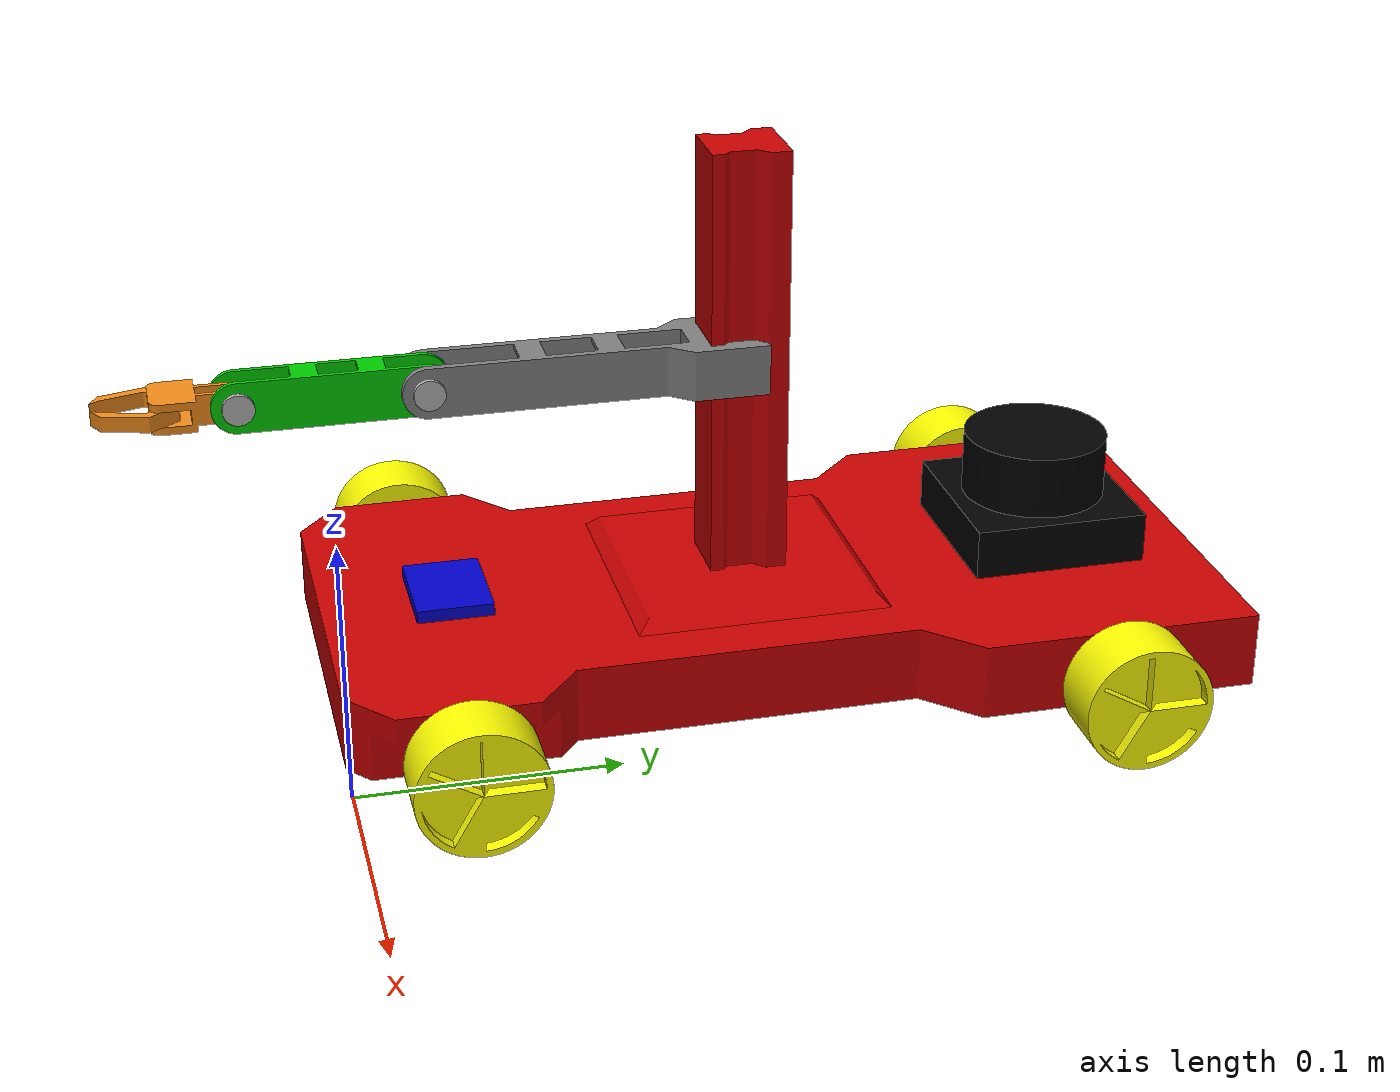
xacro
<?xml version="1.0" ?>
<robot name="robot" xmlns:xacro="http://www.ros.org/wiki/xacro">

<xacro:include filename="$(find robot_description)/urdf/materials.xacro" />
<xacro:include filename="$(find robot_description)/urdf/robot.trans" />
<xacro:include filename="$(find robot_description)/urdf/robot.gazebo" />
<link name="base_link">
  <inertial>
    <origin xyz="-0.09000000373925139 0.18020901564422104 0.015073742414888944" rpy="0 0 0"/>
    <mass value="2.30970237246439"/>
    <inertia ixx="0.025147" iyy="0.005246" izz="0.030046" ixy="-0.0" iyz="2.3e-05" ixz="0.0"/>
  </inertial>
  <visual>
    <origin xyz="0 0 0" rpy="0 0 0"/>
    <geometry>
      <mesh filename="package://robot_description/meshes/base_link.stl" scale="0.001 0.001 0.001"/>
    </geometry>
    <material name="red"/>
  </visual>
</link>

<link name="wheel_behind_right_1">
  <inertial>
    <origin xyz="-0.01128923766816145 5.551115123125783e-17 1.734723475976807e-18" rpy="0 0 0"/>
    <mass value="0.3437196887338507"/>
    <inertia ixx="0.00011" iyy="7e-05" izz="7e-05" ixy="0.0" iyz="0.0" ixz="0.0"/>
  </inertial>
  <visual>
    <origin xyz="0.183 -0.295 -0.011" rpy="0 0 0"/>
    <geometry>
      <mesh filename="package://robot_description/meshes/wheel_behind_right_1.stl" scale="0.001 0.001 0.001"/>
    </geometry>
    <material name="yellow"/>
  </visual>
  <collision>
    <origin xyz="0.183 -0.295 -0.011" rpy="0 0 0"/>
    <geometry>
      <mesh filename="package://robot_description/meshes/wheel_behind_right_1.stl" scale="0.001 0.001 0.001"/>
    </geometry>
  </collision>
</link>

<link name="wheel_front_right_1">
  <inertial>
    <origin xyz="-0.011289240544085588 3.858652136423668e-07 -4.86520340636093e-07" rpy="0 0 0"/>
    <mass value="0.3437196887338507"/>
    <inertia ixx="0.00011" iyy="7e-05" izz="7e-05" ixy="0.0" iyz="-0.0" ixz="0.0"/>
  </inertial>
  <visual>
    <origin xyz="0.183 -0.043481 -0.011052" rpy="0 0 0"/>
    <geometry>
      <mesh filename="package://robot_description/meshes/wheel_front_right_1.stl" scale="0.001 0.001 0.001"/>
    </geometry>
    <material name="yellow"/>
  </visual>
  <collision>
    <origin xyz="0.183 -0.043481 -0.011052" rpy="0 0 0"/>
    <geometry>
      <mesh filename="package://robot_description/meshes/wheel_front_right_1.stl" scale="0.001 0.001 0.001"/>
    </geometry>
  </collision>
</link>

<link name="right_steering_1">
  <inertial>
    <origin xyz="-0.0023574800810829133 3.8586521369093907e-07 -0.0051547049471979065" rpy="0 0 0"/>
    <mass value="0.0020349235937285573"/>
    <inertia ixx="0.0" iyy="0.0" izz="0.0" ixy="-0.0" iyz="0.0" ixz="-0.0"/>
  </inertial>
  <visual>
    <origin xyz="0.175052 -0.043481 -0.018" rpy="0 0 0"/>
    <geometry>
      <mesh filename="package://robot_description/meshes/right_steering_1.stl" scale="0.001 0.001 0.001"/>
    </geometry>
    <material name="black"/>
  </visual>
  <collision>
    <origin xyz="0.175052 -0.043481 -0.018" rpy="0 0 0"/>
    <geometry>
      <mesh filename="package://robot_description/meshes/right_steering_1.stl" scale="0.001 0.001 0.001"/>
    </geometry>
  </collision>
</link>

<link name="wheel_behind_left_1">
  <inertial>
    <origin xyz="0.011289237668161436 5.551115123125783e-17 0.0" rpy="0 0 0"/>
    <mass value="0.3437196887338507"/>
    <inertia ixx="0.00011" iyy="7e-05" izz="7e-05" ixy="0.0" iyz="0.0" ixz="0.0"/>
  </inertial>
  <visual>
    <origin xyz="-0.003 -0.295 -0.011" rpy="0 0 0"/>
    <geometry>
      <mesh filename="package://robot_description/meshes/wheel_behind_left_1.stl" scale="0.001 0.001 0.001"/>
    </geometry>
    <material name="yellow"/>
  </visual>
  <collision>
    <origin xyz="-0.003 -0.295 -0.011" rpy="0 0 0"/>
    <geometry>
      <mesh filename="package://robot_description/meshes/wheel_behind_left_1.stl" scale="0.001 0.001 0.001"/>
    </geometry>
  </collision>
</link>

<link name="wheel_front_left_1">
  <inertial>
    <origin xyz="0.011289237981085803 3.858652136840002e-07 1.480239065331651e-07" rpy="0 0 0"/>
    <mass value="0.3437196887338506"/>
    <inertia ixx="0.00011" iyy="7e-05" izz="7e-05" ixy="-0.0" iyz="-0.0" ixz="0.0"/>
  </inertial>
  <visual>
    <origin xyz="-0.003 -0.043481 -0.010892" rpy="0 0 0"/>
    <geometry>
      <mesh filename="package://robot_description/meshes/wheel_front_left_1.stl" scale="0.001 0.001 0.001"/>
    </geometry>
    <material name="yellow"/>
  </visual>
  <collision>
    <origin xyz="-0.003 -0.043481 -0.010892" rpy="0 0 0"/>
    <geometry>
      <mesh filename="package://robot_description/meshes/wheel_front_left_1.stl" scale="0.001 0.001 0.001"/>
    </geometry>
  </collision>
</link>

<link name="left_steering_1">
  <inertial>
    <origin xyz="0.002416096061838381 3.8586521369787796e-07 -0.0052574341556820645" rpy="0 0 0"/>
    <mass value="0.002073508228019929"/>
    <inertia ixx="0.0" iyy="0.0" izz="0.0" ixy="-0.0" iyz="0.0" ixz="0.0"/>
  </inertial>
  <visual>
    <origin xyz="0.005108 -0.043481 -0.018" rpy="0 0 0"/>
    <geometry>
      <mesh filename="package://robot_description/meshes/left_steering_1.stl" scale="0.001 0.001 0.001"/>
    </geometry>
    <material name="black"/>
  </visual>
  <collision>
    <origin xyz="0.005108 -0.043481 -0.018" rpy="0 0 0"/>
    <geometry>
      <mesh filename="package://robot_description/meshes/left_steering_1.stl" scale="0.001 0.001 0.001"/>
    </geometry>
  </collision>
</link>

<link name="base_link_slide_1">
  <inertial>
    <origin xyz="-9.561337288854777e-07 -0.007878873877462195 0.06716724178772196" rpy="0 0 0"/>
    <mass value="1.360104086481715"/>
    <inertia ixx="0.004785" iyy="0.004758" izz="0.000676" ixy="0.0" iyz="-6.6e-05" ixz="0.0"/>
  </inertial>
  <visual>
    <origin xyz="0.09 -0.175 -0.03" rpy="0 0 0"/>
    <geometry>
      <mesh filename="package://robot_description/meshes/base_link_slide_1.stl" scale="0.001 0.001 0.001"/>
    </geometry>
    <material name="red"/>
  </visual>
  <collision>
    <origin xyz="0.09 -0.175 -0.03" rpy="0 0 0"/>
    <geometry>
      <mesh filename="package://robot_description/meshes/base_link_slide_1.stl" scale="0.001 0.001 0.001"/>
    </geometry>
  </collision>
</link>

<link name="link_slide_1">
  <inertial>
    <origin xyz="4.46770416505371e-06 -0.031290443477246035 -1.5255917501511007e-09" rpy="0 0 0"/>
    <mass value="0.19806946909701184"/>
    <inertia ixx="0.000297" iyy="2.9e-05" izz="0.000311" ixy="0.0" iyz="-0.0" ixz="0.0"/>
  </inertial>
  <visual>
    <origin xyz="0.090001 -0.152161 -0.12" rpy="0 0 0"/>
    <geometry>
      <mesh filename="package://robot_description/meshes/link_slide_1.stl" scale="0.001 0.001 0.001"/>
    </geometry>
    <material name="grey"/>
  </visual>
  <collision>
    <origin xyz="0.090001 -0.152161 -0.12" rpy="0 0 0"/>
    <geometry>
      <mesh filename="package://robot_description/meshes/link_slide_1.stl" scale="0.001 0.001 0.001"/>
    </geometry>
  </collision>
</link>

<link name="link_rotate_1">
  <inertial>
    <origin xyz="0.007007510191658614 -0.03477769725571699 1.0712478404339976e-09" rpy="0 0 0"/>
    <mass value="0.056873946328959236"/>
    <inertia ixx="3.2e-05" iyy="4e-06" izz="3.2e-05" ixy="-0.0" iyz="0.0" ixz="-0.0"/>
  </inertial>
  <visual>
    <origin xyz="0.097001 -0.045 -0.12" rpy="0 0 0"/>
    <geometry>
      <mesh filename="package://robot_description/meshes/link_rotate_1.stl" scale="0.001 0.001 0.001"/>
    </geometry>
    <material name="green"/>
  </visual>
  <collision>
    <origin xyz="0.097001 -0.045 -0.12" rpy="0 0 0"/>
    <geometry>
      <mesh filename="package://robot_description/meshes/link_rotate_1.stl" scale="0.001 0.001 0.001"/>
    </geometry>
  </collision>
</link>

<link name="link_gripper_left_1">
  <inertial>
    <origin xyz="0.00417701567042679 -0.013637441028740031 0.003000003114342592" rpy="0 0 0"/>
    <mass value="0.0058998093110918725"/>
    <inertia ixx="0.0" iyy="0.0" izz="0.0" ixy="-0.0" iyz="-0.0" ixz="0.0"/>
  </inertial>
  <visual>
    <origin xyz="0.085 0.048 -0.117" rpy="0 0 0"/>
    <geometry>
      <mesh filename="package://robot_description/meshes/link_gripper_left_1.stl" scale="0.001 0.001 0.001"/>
    </geometry>
    <material name="Orange"/>
  </visual>
  <collision>
    <origin xyz="0.085 0.048 -0.117" rpy="0 0 0"/>
    <geometry>
      <mesh filename="package://robot_description/meshes/link_gripper_left_1.stl" scale="0.001 0.001 0.001"/>
    </geometry>
  </collision>
</link>

<link name="link_gripper_right_1">
  <inertial>
    <origin xyz="-0.004177018263228902 -0.013637441028740142 0.003000003114342703" rpy="0 0 0"/>
    <mass value="0.005899809311091873"/>
    <inertia ixx="0.0" iyy="0.0" izz="0.0" ixy="0.0" iyz="-0.0" ixz="-0.0"/>
  </inertial>
  <visual>
    <origin xyz="0.095 0.048 -0.117" rpy="0 0 0"/>
    <geometry>
      <mesh filename="package://robot_description/meshes/link_gripper_right_1.stl" scale="0.001 0.001 0.001"/>
    </geometry>
    <material name="Orange"/>
  </visual>
  <collision>
    <origin xyz="0.095 0.048 -0.117" rpy="0 0 0"/>
    <geometry>
      <mesh filename="package://robot_description/meshes/link_gripper_right_1.stl" scale="0.001 0.001 0.001"/>
    </geometry>
  </collision>
</link>

<link name="Gripper_1">
  <inertial>
    <origin xyz="0.005000849200019364 -0.01885437082519064 -1.0954679321883987e-05" rpy="0 0 0"/>
    <mass value="0.025324618837182965"/>
    <inertia ixx="2e-06" iyy="1e-06" izz="3e-06" ixy="0.0" iyz="-0.0" ixz="0.0"/>
  </inertial>
  <visual>
    <origin xyz="0.095001 0.025 -0.12" rpy="0 0 0"/>
    <geometry>
      <mesh filename="package://robot_description/meshes/Gripper_1.stl" scale="0.001 0.001 0.001"/>
    </geometry>
    <material name="Orange"/>
  </visual>
  <collision>
    <origin xyz="0.095001 0.025 -0.12" rpy="0 0 0"/>
    <geometry>
      <mesh filename="package://robot_description/meshes/Gripper_1.stl" scale="0.001 0.001 0.001"/>
    </geometry>
  </collision>
</link>

<link name="bulong_2_1">
  <inertial>
    <origin xyz="-0.007000294651160019 -2.982778503357597e-10 3.2037494185344073e-09" rpy="0 0 0"/>
    <mass value="0.009075432857690607"/>
    <inertia ixx="0.0" iyy="0.0" izz="0.0" ixy="-0.0" iyz="0.0" ixz="-0.0"/>
  </inertial>
  <visual>
    <origin xyz="0.083001 0.025 -0.12" rpy="0 0 0"/>
    <geometry>
      <mesh filename="package://robot_description/meshes/bulong_2_1.stl" scale="0.001 0.001 0.001"/>
    </geometry>
    <material name="silver"/>
  </visual>
  <collision>
    <origin xyz="0.083001 0.025 -0.12" rpy="0 0 0"/>
    <geometry>
      <mesh filename="package://robot_description/meshes/bulong_2_1.stl" scale="0.001 0.001 0.001"/>
    </geometry>
  </collision>
</link>

<link name="bulong_1_1">
  <inertial>
    <origin xyz="-0.01000029465115998 2.2348857070531025e-09 -3.501772871672415e-09" rpy="0 0 0"/>
    <mass value="0.01144293708143595"/>
    <inertia ixx="0.0" iyy="1e-06" izz="1e-06" ixy="-0.0" iyz="-0.0" ixz="0.0"/>
  </inertial>
  <visual>
    <origin xyz="0.080001 -0.045 -0.12" rpy="0 0 0"/>
    <geometry>
      <mesh filename="package://robot_description/meshes/bulong_1_1.stl" scale="0.001 0.001 0.001"/>
    </geometry>
    <material name="silver"/>
  </visual>
  <collision>
    <origin xyz="0.080001 -0.045 -0.12" rpy="0 0 0"/>
    <geometry>
      <mesh filename="package://robot_description/meshes/bulong_1_1.stl" scale="0.001 0.001 0.001"/>
    </geometry>
  </collision>
</link>

<link name="imu_1">
  <inertial>
    <origin xyz="1.3877787807814457e-17 0.05000000000000007 0.0025000000000000022" rpy="0 0 0"/>
    <mass value="0.047099999999999996"/>
    <inertia ixx="4e-06" iyy="6e-06" izz="1e-05" ixy="-0.0" iyz="-0.0" ixz="0.0"/>
  </inertial>
  <visual>
    <origin xyz="0.09 -0.0 -0.03" rpy="0 0 0"/>
    <geometry>
      <mesh filename="package://robot_description/meshes/imu_1.stl" scale="0.001 0.001 0.001"/>
    </geometry>
    <material name="blue"/>
  </visual>
  <collision>
    <origin xyz="0.09 -0.0 -0.03" rpy="0 0 0"/>
    <geometry>
      <mesh filename="package://robot_description/meshes/imu_1.stl" scale="0.001 0.001 0.001"/>
    </geometry>
  </collision>
</link>

<link name="laidar_1">
  <inertial>
    <origin xyz="6.938893903907228e-17 -0.0599999999999995 0.0188715560169503" rpy="0 0 0"/>
    <mass value="1.270082631702368"/>
    <inertia ixx="0.000621" iyy="0.000621" izz="0.000832" ixy="-0.0" iyz="0.0" ixz="-0.0"/>
  </inertial>
  <visual>
    <origin xyz="0.09 -0.35 -0.03" rpy="0 0 0"/>
    <geometry>
      <mesh filename="package://robot_description/meshes/laidar_1.stl" scale="0.001 0.001 0.001"/>
    </geometry>
    <material name="black"/>
  </visual>
  <collision>
    <origin xyz="0.09 -0.35 -0.03" rpy="0 0 0"/>
    <geometry>
      <mesh filename="package://robot_description/meshes/laidar_1.stl" scale="0.001 0.001 0.001"/>
    </geometry>
  </collision>
</link>

<joint name="wheel_right_rear" type="continuous">
  <origin xyz="-0.183 0.295 0.011" rpy="0 0 0"/>
  <parent link="base_link"/>
  <child link="wheel_behind_right_1"/>
  <axis xyz="1.0 0.0 0.0"/>
</joint>

<joint name="wheel_right_front" type="continuous">
  <origin xyz="-0.007948 0.0 -0.006948" rpy="0 0 0"/>
  <parent link="right_steering_1"/>
  <child link="wheel_front_right_1"/>
  <axis xyz="1.0 0.0 0.0"/>
</joint>

<joint name="steering_right" type="continuous">
  <origin xyz="-0.175052 0.043481 0.018" rpy="0 0 0"/>
  <parent link="base_link"/>
  <child link="right_steering_1"/>
  <axis xyz="0.0 0.0 -1.0"/>
</joint>

<joint name="wheel_left_rear" type="continuous">
  <origin xyz="0.003 0.295 0.011" rpy="0 0 0"/>
  <parent link="base_link"/>
  <child link="wheel_behind_left_1"/>
  <axis xyz="1.0 0.0 0.0"/>
</joint>

<joint name="wheel_left_front" type="continuous">
  <origin xyz="0.008108 0.0 -0.007108" rpy="0 0 0"/>
  <parent link="left_steering_1"/>
  <child link="wheel_front_left_1"/>
  <axis xyz="1.0 0.0 0.0"/>
</joint>

<joint name="steering_left" type="continuous">
  <origin xyz="-0.005108 0.043481 0.018" rpy="0 0 0"/>
  <parent link="base_link"/>
  <child link="left_steering_1"/>
  <axis xyz="0.0 0.0 -1.0"/>
</joint>

<joint name="base_slide" type="fixed">
  <origin xyz="-0.09 0.175 0.03" rpy="0 0 0"/>
  <parent link="base_link"/>
  <child link="base_link_slide_1"/>
</joint>

<joint name="link_slide" type="prismatic">
  <origin xyz="-1e-06 -0.022839 0.09" rpy="0 0 0"/>
  <parent link="base_link_slide_1"/>
  <child link="link_slide_1"/>
  <axis xyz="0.0 0.0 1.0"/>
  <limit upper="0.05" lower="-0.05" effort="100" velocity="100"/>
  <dynamics damping="1.0" friction="1.0"/>
</joint>

<joint name="link_rotate" type="continuous">
  <origin xyz="-0.007 -0.107161 0.0" rpy="0 0 0"/>
  <parent link="link_slide_1"/>
  <child link="link_rotate_1"/>
  <axis xyz="1 0 0"/>
</joint>

<joint name="gripper_left" type="fixed">
  <origin xyz="0.010001 -0.023 -0.003" rpy="0 0 0"/>
  <parent link="Gripper_1"/>
  <child link="link_gripper_left_1"/>
</joint>

<joint name="gripper_right" type="fixed">
  <origin xyz="1e-06 -0.023 -0.003" rpy="0 0 0"/>
  <parent link="Gripper_1"/>
  <child link="link_gripper_right_1"/>
</joint>

<joint name="bulong_2" type="fixed">
  <origin xyz="0.002 -0.07 0.0" rpy="0 0 0"/>
  <parent link="link_rotate_1"/>
  <child link="Gripper_1"/>
</joint>

<joint name="gripper" type="fixed">
  <origin xyz="0.014 -0.07 0.0" rpy="0 0 0"/>
  <parent link="link_rotate_1"/>
  <child link="bulong_2_1"/>
</joint>

<joint name="bulong_1" type="fixed">
  <origin xyz="0.01 -0.107161 0.0" rpy="0 0 0"/>
  <parent link="link_slide_1"/>
  <child link="bulong_1_1"/>
</joint>

<joint name="imu" type="fixed">
  <origin xyz="-0.09 0.0 0.03" rpy="0 0 0"/>
  <parent link="base_link"/>
  <child link="imu_1"/>
</joint>

<joint name="scan" type="fixed">
  <origin xyz="-0.09 0.35 0.03" rpy="0 0 0"/>
  <parent link="base_link"/>
  <child link="laidar_1"/>
</joint>

</robot>

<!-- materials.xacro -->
<robot name="robot" xmlns:xacro="http://www.ros.org/wiki/xacro" >

<material name="silver">
  <color rgba="0.700 0.700 0.700 1.000"/>
</material>

<material name="black">
    <color rgba="0.0 0.0 0.0 1.0"/>
</material>

<material name="white">
    <color rgba="1.0 1.0 1.0 1.0"/>
</material>

<material name="red">
    <color rgba="0.8 0.0 0.0 1.0"/>
</material>

<material name="blue">
    <color rgba="0.0 0.0 0.8 1.0"/>
</material>

<material name="green">
    <color rgba="0.0 0.8 0.0 1.0"/>
</material>

<material name="yellow">
    <color rgba="1.0 1.0 0.0 1.0"/>
</material>

<material name="orange">
    <color rgba="1.0 0.5 0.0 1.0"/>
</material>

<material name="grey">
    <color rgba="0.5 0.5 0.5 1.0"/>
</material>

<material name="purple">
    <color rgba="0.5 0.0 0.5 1.0"/>
</material>

<material name="cyan">
    <color rgba="0.0 1.0 1.0 1.0"/>
</material>
</robot>

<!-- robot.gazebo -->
<robot name="robot" xmlns:xacro="http://www.ros.org/wiki/xacro" >

<xacro:property name="body_color" value="Gazebo/Silver" />

<gazebo reference="base_link">
  <material>Gazebo/Red</material>
  <mu1>0.2</mu1>
  <mu2>0.2</mu2>
  <selfCollide>true</selfCollide>
  <gravity>true</gravity>
</gazebo>

<gazebo reference="wheel_behind_right_1">
  <material>Gazebo/Yellow</material>
  <mu1>0.2</mu1>
  <mu2>0.2</mu2>
  <selfCollide>true</selfCollide>
</gazebo>

<gazebo reference="wheel_front_right_1">
  <material>Gazebo/Yellow</material>
  <mu1>0.2</mu1>
  <mu2>0.2</mu2>
  <selfCollide>true</selfCollide>
</gazebo>

<gazebo reference="right_steering_1">
  <material>Gazebo/Black</material>
  <mu1>0.2</mu1>
  <mu2>0.2</mu2>
  <selfCollide>true</selfCollide>
</gazebo>

<gazebo reference="wheel_behind_left_1">
  <material>Gazebo/Yellow</material>
  <mu1>0.2</mu1>
  <mu2>0.2</mu2>
  <selfCollide>true</selfCollide>
</gazebo>

<gazebo reference="wheel_front_left_1">
  <material>Gazebo/Yellow</material>
  <mu1>0.2</mu1>
  <mu2>0.2</mu2>
  <selfCollide>true</selfCollide>
</gazebo>

<gazebo reference="left_steering_1">
  <material>Gazebo/Black</material>
  <mu1>0.2</mu1>
  <mu2>0.2</mu2>
  <selfCollide>true</selfCollide>
</gazebo>

<gazebo reference="base_link_slide_1">
  <material>Gazebo/Red</material>
  <mu1>0.2</mu1>
  <mu2>0.2</mu2>
  <selfCollide>true</selfCollide>
</gazebo>

<gazebo reference="link_slide_1">
  <material>Gazebo/Grey</material>
  <mu1>0.2</mu1>
  <mu2>0.2</mu2>
  <selfCollide>true</selfCollide>
</gazebo>

<gazebo reference="link_rotate_1">
  <material>Gazebo/Green</material>
  <mu1>0.2</mu1>
  <mu2>0.2</mu2>
  <selfCollide>true</selfCollide>
</gazebo>

<gazebo reference="link_gripper_left_1">
  <material>Gazebo/Orange</material>
  <mu1>0.2</mu1>
  <mu2>0.2</mu2>
  <selfCollide>true</selfCollide>
</gazebo>

<gazebo reference="link_gripper_right_1">
  <material>Gazebo/Orange</material>
  <mu1>0.2</mu1>
  <mu2>0.2</mu2>
  <selfCollide>true</selfCollide>
</gazebo>

<gazebo reference="Gripper_1">
  <material>Gazebo/Orange</material>
  <mu1>0.2</mu1>
  <mu2>0.2</mu2>
  <selfCollide>true</selfCollide>
</gazebo>

<gazebo reference="bulong_2_1">
  <material>${body_color}</material>
  <mu1>0.2</mu1>
  <mu2>0.2</mu2>
  <selfCollide>true</selfCollide>
</gazebo>

<gazebo reference="bulong_1_1">
  <material>${body_color}</material>
  <mu1>0.2</mu1>
  <mu2>0.2</mu2>
  <selfCollide>true</selfCollide>
</gazebo>

<gazebo reference="imu_1">
  <material>Gazebo/Blue</material>
  <mu1>0.2</mu1>
  <mu2>0.2</mu2>
  <selfCollide>true</selfCollide>
</gazebo>

<gazebo reference="laidar_1">
  <material>Gazebo/Black</material>
  <mu1>0.2</mu1>
  <mu2>0.2</mu2>
  <selfCollide>true</selfCollide>
</gazebo>

<gazebo>
  <plugin name="gazebo_ros_control" filename="libgazebo_ros_control.so"/>
</gazebo>

<gazebo reference="laidar_1">
    <sensor type="ray" name="lidar_sensor">
      <pose>0 0 0 0 0 0</pose>
      <visualize>false</visualize>
      <update_rate>40</update_rate>
      <ray>
        <scan>
          <horizontal>
            <samples>720</samples>
            <resolution>1</resolution>
            <min_angle>-1.570796</min_angle>
            <max_angle>1.570796</max_angle>
          </horizontal>
        </scan>
        <range>
          <min>0.10</min>
          <max>30.0</max>
          <resolution>0.01</resolution>
        </range>
        <noise>
          <type>gaussian</type>
          <mean>0.0</mean>
          <stddev>0.01</stddev>
        </noise>
      </ray>
      <plugin name="gazebo_ros_laser" filename="libgazebo_ros_laser.so">
        <topicName>/scan</topicName>
        <frameName>laidar_1</frameName>
      </plugin>
    </sensor>
  </gazebo>

  <gazebo reference="imu_1">
    <gravity>true</gravity>
    <sensor name="imu_sensor" type="imu">
      <always_on>true</always_on>
      <update_rate>100</update_rate>
      <visualize>true</visualize>
      <topic>__default_topic__</topic>
      <plugin filename="libgazebo_ros_imu_sensor.so" name="imu_plugin">
        <topicName>imu</topicName>
        <bodyName>imu_1</bodyName>
        <updateRateHZ>10.0</updateRateHZ>
        <gaussianNoise>0.0</gaussianNoise>
        <xyzOffset>0 0 0</xyzOffset>
        <rpyOffset>0 0 0</rpyOffset>
        <frameName>imu_1</frameName>
        <initialOrientationAsReference>false</initialOrientationAsReference>
      </plugin>
      <pose>0 0 0 0 0 0</pose>
    </sensor>
  </gazebo>
</robot>
